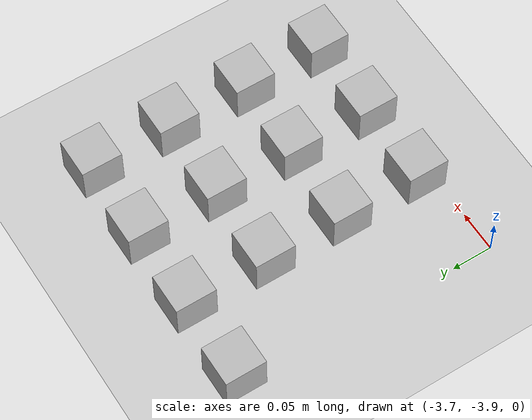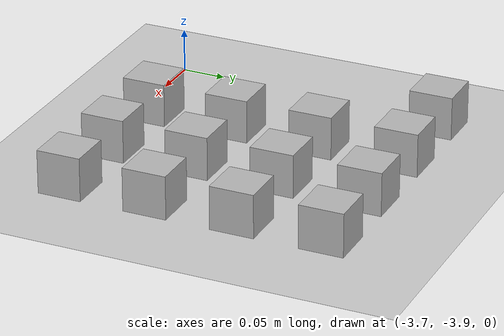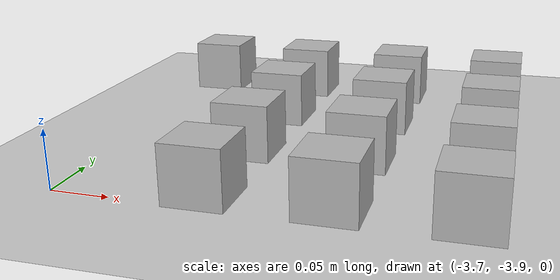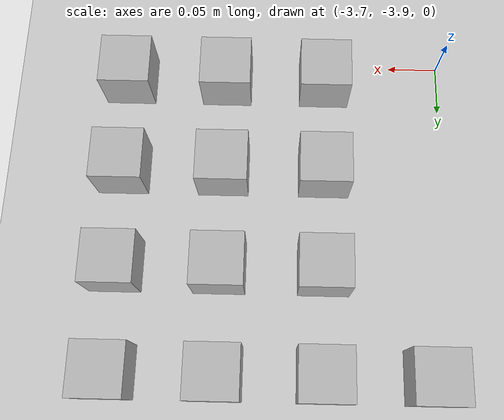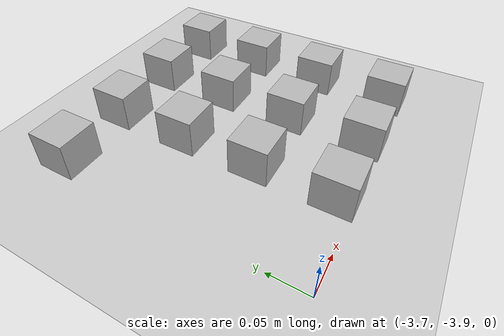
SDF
<sdf version="1.6">
 <world name="default">
  <model name="ground_plane">
   <static>1</static>
   <link name="link">
    <collision name="collision">
     <geometry><plane><normal>0 0 1</normal><size>100 100</size></plane></geometry>
     <surface><friction><ode><mu>100</mu><mu2>50</mu2></ode></friction></surface>
    </collision>
    <visual name="visual">
     <cast_shadows>0</cast_shadows>
     <geometry><plane><normal>0 0 1</normal><size>100 100</size></plane></geometry>
     <material>
      <script><uri>file://media/materials/scripts/gazebo.material</uri><name>Gazebo/Grey</name></script>
     </material>
    </visual>
   </link>
  </model>
  <model name="at65">
   <static>0</static>
   <link name="link">
    <inertial>
     <mass>0.01</mass>
     <inertia><ixx>4e-05</ixx><ixy>0</ixy><ixz>0</ixz><iyy>4e-05</iyy><iyz>0</iyz><izz>4e-05</izz></inertia>
    </inertial>
    <visual name="visual">
     <geometry><box><size>0.05 0.05 0.05</size></box></geometry>
     <material>
      <script>
       <uri>model://at0/materials/scripts</uri>
       <uri>model://at0/materials/textures</uri>
       <name>at0/Diffuse</name>
      </script>
     </material>
    </visual>
    <collision name="collision">
     <geometry><box><size>0.05 0.05 0.05</size></box></geometry>
     <surface><friction><ode><mu>0.8</mu><mu2>0.7</mu2></ode></friction></surface>
    </collision>
   </link>
   <pose>-3.58029 -3.87972 0.02499 0 2e-06 0</pose>
  </model>
  <model name="at66">
   <static>0</static>
   <link name="link">
    <inertial>
     <mass>0.01</mass>
     <inertia><ixx>4e-05</ixx><ixy>0</ixy><ixz>0</ixz><iyy>4e-05</iyy><iyz>0</iyz><izz>4e-05</izz></inertia>
    </inertial>
    <visual name="visual">
     <geometry><box><size>0.05 0.05 0.05</size></box></geometry>
     <material>
      <script>
       <uri>model://at0/materials/scripts</uri>
       <uri>model://at0/materials/textures</uri>
       <name>at0/Diffuse</name>
      </script>
     </material>
    </visual>
    <collision name="collision">
     <geometry><box><size>0.05 0.05 0.05</size></box></geometry>
     <surface><friction><ode><mu>0.8</mu><mu2>0.7</mu2></ode></friction></surface>
    </collision>
   </link>
   <pose>-3.48029 -3.87972 0.02499 0 2e-06 0</pose>
  </model>
  <model name="at67">
   <static>0</static>
   <link name="link">
    <inertial>
     <mass>0.01</mass>
     <inertia><ixx>4e-05</ixx><ixy>0</ixy><ixz>0</ixz><iyy>4e-05</iyy><iyz>0</iyz><izz>4e-05</izz></inertia>
    </inertial>
    <visual name="visual">
     <geometry><box><size>0.05 0.05 0.05</size></box></geometry>
     <material>
      <script>
       <uri>model://at0/materials/scripts</uri>
       <uri>model://at0/materials/textures</uri>
       <name>at0/Diffuse</name>
      </script>
     </material>
    </visual>
    <collision name="collision">
     <geometry><box><size>0.05 0.05 0.05</size></box></geometry>
     <surface><friction><ode><mu>0.8</mu><mu2>0.7</mu2></ode></friction></surface>
    </collision>
   </link>
   <pose>-3.38029 -3.87972 0.025 0 -2e-06 0</pose>
  </model>
  <model name="at69">
   <static>0</static>
   <link name="link">
    <inertial>
     <mass>0.01</mass>
     <inertia><ixx>4e-05</ixx><ixy>0</ixy><ixz>0</ixz><iyy>4e-05</iyy><iyz>0</iyz><izz>4e-05</izz></inertia>
    </inertial>
    <visual name="visual">
     <geometry><box><size>0.05 0.05 0.05</size></box></geometry>
     <material>
      <script>
       <uri>model://at0/materials/scripts</uri>
       <uri>model://at0/materials/textures</uri>
       <name>at0/Diffuse</name>
      </script>
     </material>
    </visual>
    <collision name="collision">
     <geometry><box><size>0.05 0.05 0.05</size></box></geometry>
     <surface><friction><ode><mu>0.8</mu><mu2>0.7</mu2></ode></friction></surface>
    </collision>
   </link>
   <pose>-3.58029 -3.77972 0.025 0 -2e-06 0</pose>
  </model>
  <model name="at70">
   <static>0</static>
   <link name="link">
    <inertial>
     <mass>0.01</mass>
     <inertia><ixx>4e-05</ixx><ixy>0</ixy><ixz>0</ixz><iyy>4e-05</iyy><iyz>0</iyz><izz>4e-05</izz></inertia>
    </inertial>
    <visual name="visual">
     <geometry><box><size>0.05 0.05 0.05</size></box></geometry>
     <material>
      <script>
       <uri>model://at0/materials/scripts</uri>
       <uri>model://at0/materials/textures</uri>
       <name>at0/Diffuse</name>
      </script>
     </material>
    </visual>
    <collision name="collision">
     <geometry><box><size>0.05 0.05 0.05</size></box></geometry>
     <surface><friction><ode><mu>0.8</mu><mu2>0.7</mu2></ode></friction></surface>
    </collision>
   </link>
   <pose>-3.48029 -3.77972 0.025 0 -2e-06 0</pose>
  </model>
  <model name="at71">
   <static>0</static>
   <link name="link">
    <inertial>
     <mass>0.01</mass>
     <inertia><ixx>4e-05</ixx><ixy>0</ixy><ixz>0</ixz><iyy>4e-05</iyy><iyz>0</iyz><izz>4e-05</izz></inertia>
    </inertial>
    <visual name="visual">
     <geometry><box><size>0.05 0.05 0.05</size></box></geometry>
     <material>
      <script>
       <uri>model://at0/materials/scripts</uri>
       <uri>model://at0/materials/textures</uri>
       <name>at0/Diffuse</name>
      </script>
     </material>
    </visual>
    <collision name="collision">
     <geometry><box><size>0.05 0.05 0.05</size></box></geometry>
     <surface><friction><ode><mu>0.8</mu><mu2>0.7</mu2></ode></friction></surface>
    </collision>
   </link>
   <pose>-3.38029 -3.77972 0.025 0 -2e-06 0</pose>
  </model>
  <model name="at73">
   <static>0</static>
   <link name="link">
    <inertial>
     <mass>0.01</mass>
     <inertia><ixx>4e-05</ixx><ixy>0</ixy><ixz>0</ixz><iyy>4e-05</iyy><iyz>0</iyz><izz>4e-05</izz></inertia>
    </inertial>
    <visual name="visual">
     <geometry><box><size>0.05 0.05 0.05</size></box></geometry>
     <material>
      <script>
       <uri>model://at0/materials/scripts</uri>
       <uri>model://at0/materials/textures</uri>
       <name>at0/Diffuse</name>
      </script>
     </material>
    </visual>
    <collision name="collision">
     <geometry><box><size>0.05 0.05 0.05</size></box></geometry>
     <surface><friction><ode><mu>0.8</mu><mu2>0.7</mu2></ode></friction></surface>
    </collision>
   </link>
   <pose>-3.58029 -3.67972 0.02499 0 2e-06 0</pose>
  </model>
  <model name="at74">
   <static>0</static>
   <link name="link">
    <inertial>
     <mass>0.01</mass>
     <inertia><ixx>4e-05</ixx><ixy>0</ixy><ixz>0</ixz><iyy>4e-05</iyy><iyz>0</iyz><izz>4e-05</izz></inertia>
    </inertial>
    <visual name="visual">
     <geometry><box><size>0.05 0.05 0.05</size></box></geometry>
     <material>
      <script>
       <uri>model://at0/materials/scripts</uri>
       <uri>model://at0/materials/textures</uri>
       <name>at0/Diffuse</name>
      </script>
     </material>
    </visual>
    <collision name="collision">
     <geometry><box><size>0.05 0.05 0.05</size></box></geometry>
     <surface><friction><ode><mu>0.8</mu><mu2>0.7</mu2></ode></friction></surface>
    </collision>
   </link>
   <pose>-3.48029 -3.67972 0.025 0 -2e-06 0</pose>
  </model>
  <model name="at75">
   <static>0</static>
   <link name="link">
    <inertial>
     <mass>0.01</mass>
     <inertia><ixx>4e-05</ixx><ixy>0</ixy><ixz>0</ixz><iyy>4e-05</iyy><iyz>0</iyz><izz>4e-05</izz></inertia>
    </inertial>
    <visual name="visual">
     <geometry><box><size>0.05 0.05 0.05</size></box></geometry>
     <material>
      <script>
       <uri>model://at0/materials/scripts</uri>
       <uri>model://at0/materials/textures</uri>
       <name>at0/Diffuse</name>
      </script>
     </material>
    </visual>
    <collision name="collision">
     <geometry><box><size>0.05 0.05 0.05</size></box></geometry>
     <surface><friction><ode><mu>0.8</mu><mu2>0.7</mu2></ode></friction></surface>
    </collision>
   </link>
   <pose>-3.38029 -3.67972 0.025 0 -2e-06 0</pose>
  </model>
  <model name="at76">
   <static>0</static>
   <link name="link">
    <inertial>
     <mass>0.01</mass>
     <inertia><ixx>4e-05</ixx><ixy>0</ixy><ixz>0</ixz><iyy>4e-05</iyy><iyz>0</iyz><izz>4e-05</izz></inertia>
    </inertial>
    <visual name="visual">
     <geometry><box><size>0.05 0.05 0.05</size></box></geometry>
     <material>
      <script>
       <uri>model://at0/materials/scripts</uri>
       <uri>model://at0/materials/textures</uri>
       <name>at0/Diffuse</name>
      </script>
     </material>
    </visual>
    <collision name="collision">
     <geometry><box><size>0.05 0.05 0.05</size></box></geometry>
     <surface><friction><ode><mu>0.8</mu><mu2>0.7</mu2></ode></friction></surface>
    </collision>
   </link>
   <pose>-3.68029 -3.57972 0.02499 0 2e-06 0</pose>
  </model>
  <model name="at77">
   <static>0</static>
   <link name="link">
    <inertial>
     <mass>0.01</mass>
     <inertia><ixx>4e-05</ixx><ixy>0</ixy><ixz>0</ixz><iyy>4e-05</iyy><iyz>0</iyz><izz>4e-05</izz></inertia>
    </inertial>
    <visual name="visual">
     <geometry><box><size>0.05 0.05 0.05</size></box></geometry>
     <material>
      <script>
       <uri>model://at0/materials/scripts</uri>
       <uri>model://at0/materials/textures</uri>
       <name>at0/Diffuse</name>
      </script>
     </material>
    </visual>
    <collision name="collision">
     <geometry><box><size>0.05 0.05 0.05</size></box></geometry>
     <surface><friction><ode><mu>0.8</mu><mu2>0.7</mu2></ode></friction></surface>
    </collision>
   </link>
   <pose>-3.58029 -3.57972 0.02499 0 2e-06 0</pose>
  </model>
  <model name="at78">
   <static>0</static>
   <link name="link">
    <inertial>
     <mass>0.01</mass>
     <inertia><ixx>4e-05</ixx><ixy>0</ixy><ixz>0</ixz><iyy>4e-05</iyy><iyz>0</iyz><izz>4e-05</izz></inertia>
    </inertial>
    <visual name="visual">
     <geometry><box><size>0.05 0.05 0.05</size></box></geometry>
     <material>
      <script>
       <uri>model://at0/materials/scripts</uri>
       <uri>model://at0/materials/textures</uri>
       <name>at0/Diffuse</name>
      </script>
     </material>
    </visual>
    <collision name="collision">
     <geometry><box><size>0.05 0.05 0.05</size></box></geometry>
     <surface><friction><ode><mu>0.8</mu><mu2>0.7</mu2></ode></friction></surface>
    </collision>
   </link>
   <pose>-3.48029 -3.57972 0.025 0 -2e-06 0</pose>
  </model>
  <model name="at79">
   <static>0</static>
   <link name="link">
    <inertial>
     <mass>0.01</mass>
     <inertia><ixx>4e-05</ixx><ixy>0</ixy><ixz>0</ixz><iyy>4e-05</iyy><iyz>0</iyz><izz>4e-05</izz></inertia>
    </inertial>
    <visual name="visual">
     <geometry><box><size>0.05 0.05 0.05</size></box></geometry>
     <material>
      <script>
       <uri>model://at0/materials/scripts</uri>
       <uri>model://at0/materials/textures</uri>
       <name>at0/Diffuse</name>
      </script>
     </material>
    </visual>
    <collision name="collision">
     <geometry><box><size>0.05 0.05 0.05</size></box></geometry>
     <surface><friction><ode><mu>0.8</mu><mu2>0.7</mu2></ode></friction></surface>
    </collision>
   </link>
   <pose>-3.38029 -3.57972 0.025 0 -2e-06 0</pose>
  </model>
 </world>
</sdf>
